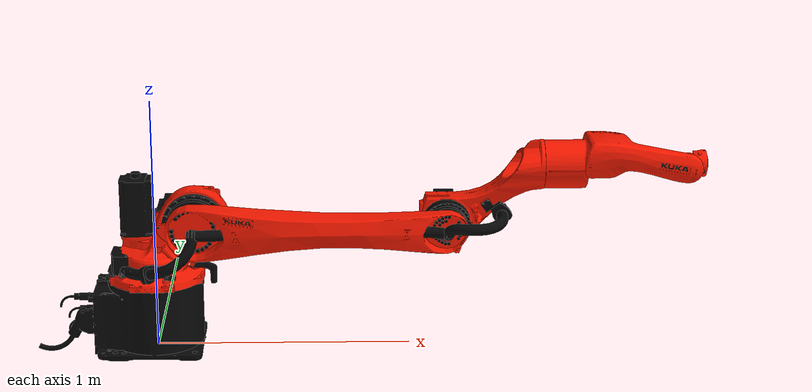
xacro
<?xml version="1.0" encoding="UTF-8"?>
<robot xmlns:xacro="http://ros.org/wiki/xacro" name="kr8_r2100_2_arc_hw">
  <!-- Import macro files  -->
  <xacro:include filename="$(find kuka_cybertech_support)/urdf/kr8_r2100_2_arc_hw_macro.xacro"/>
  <xacro:include filename="$(find kuka_cybertech_support)/urdf/kr_cybertech_ros2_control_macro.xacro"/>
  <!-- Read additional arguments  -->
  <xacro:arg name="driver_version" default="eki_rsi"/>
  <xacro:arg name="mode" default="hardware"/>
  <xacro:arg name="gpio_config" default=""/>
  <xacro:arg name="roundtrip_time" default="0"/>
  <xacro:arg name="client_ip" default="0.0.0.0"/>
  <xacro:arg name="client_port" default="59152"/>
  <xacro:arg name="mxa_client_port" default="1337"/>
  <xacro:arg name="controller_ip" default="0.0.0.0"/>
  <xacro:arg name="verify_robot_model" default="true"/>
  <xacro:arg name="prefix" default=""/>
  <xacro:arg name="x" default="0"/>
  <xacro:arg name="y" default="0"/>
  <xacro:arg name="z" default="0"/>
  <xacro:arg name="roll" default="0"/>
  <xacro:arg name="pitch" default="0"/>
  <xacro:arg name="yaw" default="0"/>
  <xacro:arg name="rsi_xml_config_file" default=""/>
  <xacro:kuka_cybertech_ros2_control name="$(arg prefix)kr8_r2100_2_arc_hw" driver_version="$(arg driver_version)" client_ip="$(arg client_ip)" client_port="$(arg client_port)" mxa_client_port="$(arg mxa_client_port)" controller_ip="$(arg controller_ip)" prefix="$(arg prefix)" mode="$(arg mode)" gpio_config="$(arg gpio_config)" roundtrip_time="$(arg roundtrip_time)" verify_robot_model="$(arg verify_robot_model)" rsi_xml_config_file="$(arg rsi_xml_config_file)">
    <ext_axes_ros2_control_joints/>
  </xacro:kuka_cybertech_ros2_control>
  <!-- world link -->
  <link name="world"/>
  <!-- robot links, joints -->
  <xacro:kuka_kr8_r2100_2_arc_hw_robot prefix="$(arg prefix)" package_name="kuka_cybertech_support"/>
  <!-- default world - base_link joint -->
  <joint name="$(arg prefix)world-base_link" type="fixed">
    <parent link="world"/>
    <child link="$(arg prefix)base_link"/>
    <origin xyz="$(arg x) $(arg y) $(arg z)" rpy="$(arg roll) $(arg pitch) $(arg yaw)"/>
  </joint>
</robot>

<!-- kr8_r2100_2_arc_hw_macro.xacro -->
<robot xmlns:xacro="http://www.ros.org/wiki/xacro" name="kr8_r2100_2_arc_hw">
  <xacro:macro name="kuka_kr8_r2100_2_arc_hw_robot" params="prefix package_name">
    <link name="${prefix}base"/>
    <link name="${prefix}base_link">
      <collision>
        <geometry>
          <mesh filename="package://${package_name}/meshes/kr8_r2100_2_arc_hw/collision/base_link.stl"/>
        </geometry>
        <origin rpy="0.0 -0.0 0.0" xyz="0.0 0.0 0.0"/>
      </collision>
      <inertial>
        <inertia ixx="1.252976825674768" ixy="0.0" ixz="0.0" iyy="1.5087363498191613" iyz="0.0" izz="1.8002050809865324"/>
        <mass value="6.5217E1"/>
        <origin rpy="-1.886948109292702 -0.747294166741969 0.1256776079777596" xyz="-0.04674646181210419 -0.002507959581090819 0.16662425870555223"/>
      </inertial>
      <visual>
        <geometry>
          <mesh filename="package://${package_name}/meshes/kr8_r2100_2_arc_hw/visual/base_link.dae"/>
        </geometry>
        <origin rpy="0.0 -0.0 0.0" xyz="0.0 0.0 0.0"/>
      </visual>
    </link>
    <link name="${prefix}flange"/>
    <link name="${prefix}link_1">
      <collision>
        <geometry>
          <mesh filename="package://${package_name}/meshes/kr8_r2100_2_arc_hw/collision/link_1.stl"/>
        </geometry>
        <origin rpy="-3.141592653589793 0.0 -0.0" xyz="0.0 -3.8294705409337735e-17 0.3127"/>
      </collision>
      <inertial>
        <inertia ixx="1.7259675580526077" ixy="0.0" ixz="0.0" iyy="1.4274328742189513" iyz="0.0" izz="2.12110222139548"/>
        <mass value="8.4207000000000008E1"/>
        <origin rpy="-0.7660833907477964 -0.5319848451574963 2.7681748746980546" xyz="0.05047057251772418 -0.022364893002957 -0.13123349181303218"/>
      </inertial>
      <visual>
        <geometry>
          <mesh filename="package://${package_name}/meshes/kr8_r2100_2_arc_hw/visual/link_1.dae"/>
        </geometry>
        <origin rpy="-3.141592653589793 0.0 -0.0" xyz="0.0 -3.8294705409337735e-17 0.3127"/>
      </visual>
    </link>
    <link name="${prefix}link_2">
      <collision>
        <geometry>
          <mesh filename="package://${package_name}/meshes/kr8_r2100_2_arc_hw/collision/link_2.stl"/>
        </geometry>
        <origin rpy="1.5707963267948968 -0.0 1.5707963267948966" xyz="-0.52 -0.15999999999999998 0.06430000000000007"/>
      </collision>
      <inertial>
        <inertia ixx="9.848872218590296" ixy="0.0" ixz="0.0" iyy="0.8938415035337743" iyz="0.0" izz="10.208614788058465"/>
        <mass value="6.1777E1"/>
        <origin rpy="-1.5492266158302008 -1.530929242184048 -0.02076298737112004" xyz="0.4020749599365459 0.007894633925247259 -0.07314826995483756"/>
      </inertial>
      <visual>
        <geometry>
          <mesh filename="package://${package_name}/meshes/kr8_r2100_2_arc_hw/visual/link_2.dae"/>
        </geometry>
        <origin rpy="1.5707963267948968 -0.0 1.5707963267948966" xyz="-0.52 -0.15999999999999998 0.06430000000000007"/>
      </visual>
    </link>
    <link name="${prefix}link_3">
      <collision>
        <geometry>
          <mesh filename="package://${package_name}/meshes/kr8_r2100_2_arc_hw/collision/link_3.stl"/>
        </geometry>
        <origin rpy="1.5707963267948968 -0.0 -0.0" xyz="-0.16000000000000006 1.5 0.07660000000000007"/>
      </collision>
      <inertial>
        <inertia ixx="1.047151473089262" ixy="0.0" ixz="0.0" iyy="0.4665789563173379" iyz="0.0" izz="1.3650681948783625"/>
        <mass value="3.3579156324E1"/>
        <origin rpy="2.9715216784910647 0.19136626342049948 1.3935743021200309" xyz="0.15308797734066615 -0.09011025059963622 0.017381438457181403"/>
      </inertial>
      <visual>
        <geometry>
          <mesh filename="package://${package_name}/meshes/kr8_r2100_2_arc_hw/visual/link_3.dae"/>
        </geometry>
        <origin rpy="1.5707963267948968 -0.0 -0.0" xyz="-0.16000000000000006 1.5 0.07660000000000007"/>
      </visual>
    </link>
    <link name="${prefix}link_4">
      <collision>
        <geometry>
          <mesh filename="package://${package_name}/meshes/kr8_r2100_2_arc_hw/collision/link_4.stl"/>
        </geometry>
        <origin rpy="1.8369701987210297e-16 1.5707963267948966 0.0" xyz="-1.72 2.5041036069705178e-17 0.5766"/>
      </collision>
      <inertial>
        <inertia ixx="0.09715760182914325" ixy="0.0" ixz="0.0" iyy="0.5638771829226438" iyz="0.0" izz="0.6004166224643788"/>
        <mass value="1.7459E1"/>
        <origin rpy="0.67478944865236 -1.438321072808998 2.582362586915358" xyz="0.02266533020218799 -0.006666656165874335 -0.22332838077782233"/>
      </inertial>
      <visual>
        <geometry>
          <mesh filename="package://${package_name}/meshes/kr8_r2100_2_arc_hw/visual/link_4.dae"/>
        </geometry>
        <origin rpy="1.8369701987210297e-16 1.5707963267948966 0.0" xyz="-1.72 2.5041036069705178e-17 0.5766"/>
      </visual>
    </link>
    <link name="${prefix}link_5">
      <collision>
        <geometry>
          <mesh filename="package://${package_name}/meshes/kr8_r2100_2_arc_hw/collision/link_5.stl"/>
        </geometry>
        <origin rpy="1.5707963267948968 -3.749399456654644e-33 -6.123233995736766e-17" xyz="-1.0950000000000002 1.72 0.04149999999999999"/>
      </collision>
      <inertial>
        <inertia ixx="0.003125545723099804" ixy="0.0" ixz="0.0" iyy="0.005384856481237445" iyz="0.0" izz="0.006049597795662749"/>
        <mass value="2.75E0"/>
        <origin rpy="-0.016921791085990928 -0.8407382461779881 -3.139045902023482" xyz="0.013000000000000001 0.0 0.004"/>
      </inertial>
      <visual>
        <geometry>
          <mesh filename="package://${package_name}/meshes/kr8_r2100_2_arc_hw/visual/link_5.dae"/>
        </geometry>
        <origin rpy="1.5707963267948968 -3.749399456654644e-33 -6.123233995736766e-17" xyz="-1.0950000000000002 1.72 0.04149999999999999"/>
      </visual>
    </link>
    <link name="${prefix}link_6">
      <collision>
        <geometry>
          <mesh filename="package://${package_name}/meshes/kr8_r2100_2_arc_hw/collision/link_6.stl"/>
        </geometry>
        <origin rpy="1.2246467991473532e-16 1.5707963267948966 0.0" xyz="-1.7200000000000002 -8.833780868240262e-17 1.1614999999999998"/>
      </collision>
      <inertial>
        <inertia ixx="5.740114162352336E-4" ixy="0.0" ixz="0.0" iyy="5.598617439548868E-4" iyz="0.0" izz="8.441268398098798E-4"/>
        <mass value="8.5E-1"/>
        <origin rpy="-0.021124828875844007 1.0529643005096694E-4 -0.028585469265302654" xyz="0.0 5.0E-4 0.012"/>
      </inertial>
      <visual>
        <geometry>
          <mesh filename="package://${package_name}/meshes/kr8_r2100_2_arc_hw/visual/link_6.dae"/>
        </geometry>
        <origin rpy="1.2246467991473532e-16 1.5707963267948966 0.0" xyz="-1.7200000000000002 -8.833780868240262e-17 1.1614999999999998"/>
      </visual>
    </link>
    <link name="${prefix}tool0"/>
    <joint name="${prefix}base_link-base" type="fixed">
      <child link="${prefix}base"/>
      <parent link="${prefix}base_link"/>
    </joint>
    <joint name="${prefix}joint_1" type="revolute">
      <axis xyz="0.0 0.0 1.0"/>
      <child link="${prefix}link_1"/>
      <limit effort="2.0009999999999995E3" lower="-3.2288591125E0" upper="3.2288591125E0" velocity="3.4906585039886591E0"/>
      <origin rpy="3.141592653589793 -0.0 0.0" xyz="0.0 0.0 0.3127"/>
      <parent link="${prefix}base_link"/>
    </joint>
    <joint name="${prefix}joint_2" type="revolute">
      <axis xyz="0.0 0.0 1.0"/>
      <child link="${prefix}link_2"/>
      <limit effort="1.7507279369169439E3" lower="-3.2288591125E0" upper="1.1344640125E0" velocity="2.9948518456789457E0"/>
      <origin rpy="1.5707963267948966 -0.0 0.0" xyz="0.16 0.0643 -0.2073"/>
      <parent link="${prefix}link_1"/>
    </joint>
    <joint name="${prefix}joint_3" type="revolute">
      <axis xyz="0.0 0.0 1.0"/>
      <child link="${prefix}link_3"/>
      <limit effort="9.1006343021482007E2" lower="-2.408554365E0" upper="3.0543261875E0" velocity="3.3161255787892263E0"/>
      <origin rpy="0.0 -0.0 0.0" xyz="0.98 0.0 -0.012299999999999997"/>
      <parent link="${prefix}link_2"/>
    </joint>
    <joint name="${prefix}joint_4" type="revolute">
      <axis xyz="0.0 0.0 1.0"/>
      <child link="${prefix}link_4"/>
      <limit effort="5.189173423E1" lower="-2.8797932625E0" upper="2.8797932625E0" velocity="7.5049157835756173E0"/>
      <origin rpy="1.5707963267948966 -0.0 -1.5707963267948966" xyz="0.4166 -0.22 0.0766"/>
      <parent link="${prefix}link_3"/>
    </joint>
    <joint name="${prefix}joint_5" type="revolute">
      <axis xyz="0.0 0.0 1.0"/>
      <child link="${prefix}link_5"/>
      <limit effort="3.6942942428836325E1" lower="-2.0071286375E0" upper="2.44346095E0" velocity="7.5049157835756173E0"/>
      <origin rpy="0.0 1.5707963267948966 1.5707963267948966" xyz="0.0 -0.0415 -0.5184"/>
      <parent link="${prefix}link_4"/>
    </joint>
    <joint name="${prefix}joint_6" type="revolute">
      <axis xyz="0.0 0.0 1.0"/>
      <child link="${prefix}link_6"/>
      <limit effort="3.92448E1" lower="-6.108652375E0" upper="6.108652375E0" velocity="1.0995574287564276E1"/>
      <origin rpy="1.5707963267948966 -0.0 -1.5707963267948966" xyz="0.0665 0.0 0.0415"/>
      <parent link="${prefix}link_5"/>
    </joint>
    <joint name="${prefix}link6-flange" type="fixed">
      <child link="${prefix}flange"/>
      <origin rpy="0.0 1.5707963267948966 0.0" xyz="0.0 0.0 -0.0135"/>
      <parent link="${prefix}link_6"/>
    </joint>
    <joint name="${prefix}link6-tool0" type="fixed">
      <child link="${prefix}tool0"/>
      <origin rpy="3.141592653589793 1.2246467991473532E-16 3.141592653589793" xyz="0.0 0.0 -0.0135"/>
      <parent link="${prefix}link_6"/>
    </joint>
  </xacro:macro>
</robot>
